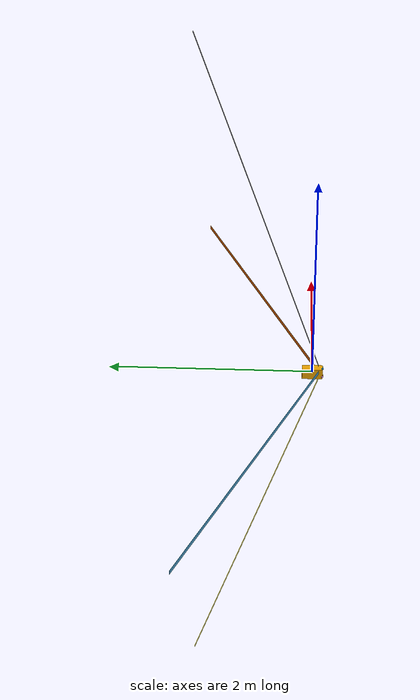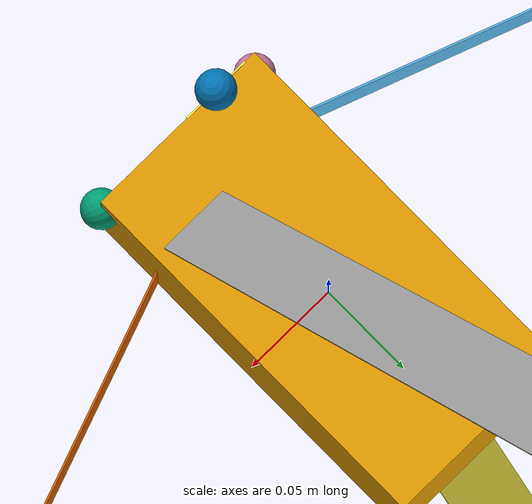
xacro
<?xml version="1.0" ?>

<robot name="d3_2U" xmlns:xacro="http://ros.org/wiki/xacro">

    <xacro:property name="damping_value" value="0.0" />
    <xacro:property name="friction_value" value="0.0" />

    <xacro:property name="boom_length" value="3.7" />
    <xacro:property name="boom_mass" value="0.09" />
    <xacro:property name="boom_width" value="0.038" />
    <xacro:property name="boom_thickness" value="0.001" />

    <xacro:macro name="boom_master" params="id x y z roll pitch yaw">
        <link name="d3_boom_${id}_link">
            <visual>
                <origin xyz="0 0 0" rpy="0 0 0" />
                <geometry>
                    <mesh filename="/home/huro/Documentos/IsaacLab/source/isaaclab_tasks/isaaclab_tasks/manager_based/my/D3_2U/usd/meshes/D3_boom.stl" scale="1 1 1"/>
                </geometry>
            </visual>
            <collision>
                <origin xyz="0 0 0" rpy="0 0 0" />
                <geometry>
                    <box size= "0.0 0.0 0.0" />
                </geometry>
            </collision>
            <inertial>
                <mass value="0.001" />
                <inertia ixx="0.26570010274166667" ixy="0.0" ixz="0.0" iyy="0.26572810896666665" iyz="0" izz="2.8045041666666665e-05" />
            </inertial>
        </link>

        <joint name="d3_boom_${id}_joint" type="prismatic">
            <parent link="cubesat2U_link"/>
            <child  link="d3_boom_${id}_link"/>
            <origin xyz="${x} ${y} ${z}" rpy="${roll} ${pitch} ${yaw}"/>
            <axis  xyz="0 0 1"/>
            <limit lower="0.0" upper="${boom_length}" effort="0.0" velocity="0.05"/>
        </joint>
    </xacro:macro>

    <xacro:macro name="boom_pointmass" params="id x y z roll pitch yaw">

        <!-- Point Mass simulating the CoM of the boom -->
        <link name="d3_boom_${id}_pointmass_link">
            <visual>
                <origin xyz="0 0 0" rpy="0 0 0" />
                <geometry>
                    <sphere radius="0.01"/>
                </geometry>
            </visual>
            <collision>
                <origin xyz="0 0 0" rpy="0 0 0" />
                <geometry>
                    <sphere radius="0.01"/>
                </geometry>
            </collision>
            <inertial>
                <mass value="${boom_mass}" />
                <inertia ixx="0.0001" ixy="0.0" ixz="0.0" iyy="0.0001" iyz="0.0" izz="0.0001" />
            </inertial>
        </link>

        <joint name="d3_boom_${id}_pointmass_joint" type="prismatic">
            <parent link="cubesat2U_link"/>
            <child  link="d3_boom_${id}_pointmass_link"/>
            <origin xyz="${x} ${y} ${z}" rpy="${roll} ${pitch} ${yaw}"/>
            <axis  xyz="0 0 1"/>
            <limit lower="0.0" upper="${boom_length / 2}" effort="0.0" velocity="0.05"/>
            <mimic joint="d3_boom_${id}_joint" multiplier="0.5" offset="0.0"/>
        </joint>

    </xacro:macro>

    <!-- MODEL -->
    <link name="cubesat2U_link">
        <visual>
            <origin xyz="0 0 0" rpy="0 0 0" />
            <geometry>
                <mesh filename="/home/huro/Documentos/IsaacLab/source/isaaclab_tasks/isaaclab_tasks/manager_based/my/D3_2U/usd/meshes/Cubesat_2U.stl"/>
            </geometry>
        </visual>
        <collision>
            <geometry>
                <box size="0.1 0.1 0.2"/>
            </geometry>
        </collision>
        <inertial>
            <mass value="3.0" />
            <inertia ixx="0.004454166666666668" ixy="0.0" ixz="0.0" iyy="0.004454166666666668" iyz="0" izz="0.001781666666666667" />
        </inertial>
    </link>

    <!-- BOOM 1 -->
    <xacro:boom_master id="1" x="0.05" y="-0.1" z="0.025" roll="0.0" pitch="1.5708" yaw="-0.349066" />
    <xacro:boom_pointmass id="1" x="0.05" y="-0.1" z="0.025" roll="0.0" pitch="1.5708" yaw="-0.349066" />

    <!-- BOOM 2 -->
    <xacro:boom_master id="2" x="-0.025" y="-0.1" z="0.05" roll="0.349066" pitch="0.0" yaw="0.0" />
    <xacro:boom_pointmass id="2" x="-0.025" y="-0.1" z="0.05" roll="0.349066" pitch="0.0" yaw="0.0" />

    <!-- BOOM 3 -->
    <xacro:boom_master id="3" x="-0.05" y="-0.1" z="-0.025" roll="0.0" pitch="-1.5708" yaw="0.349066" />
    <xacro:boom_pointmass id="3" x="-0.05" y="-0.1" z="-0.025" roll="0.0" pitch="-1.5708" yaw="0.349066" />

    <!-- BOOM 4 -->
    <xacro:boom_master id="4" x="0.025" y="-0.1" z="-0.05" roll="0.349066" pitch="3.14159" yaw="0" />
    <xacro:boom_pointmass id="4" x="0.025" y="-0.1" z="-0.05" roll="0.349066" pitch="3.14159" yaw="0" />

</robot>
